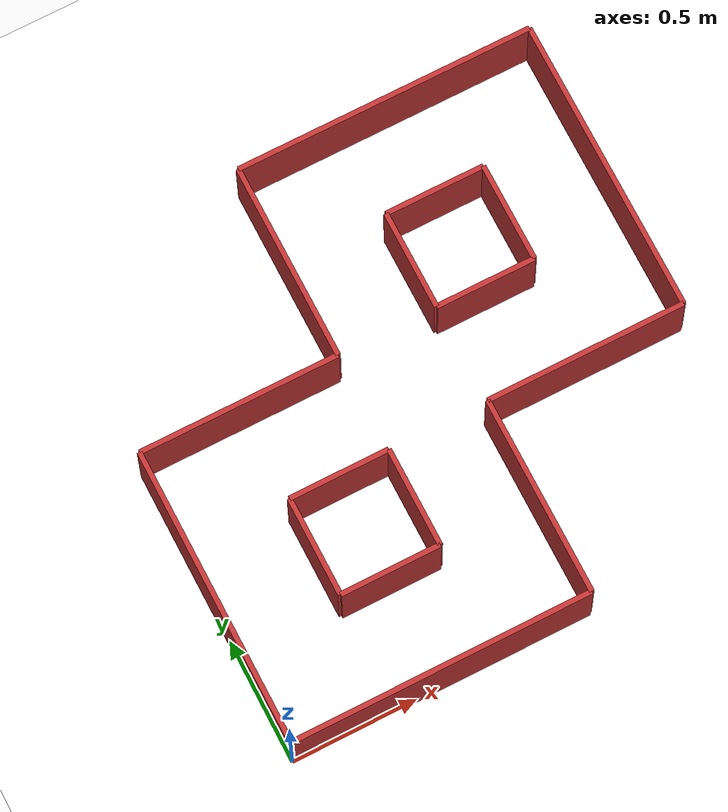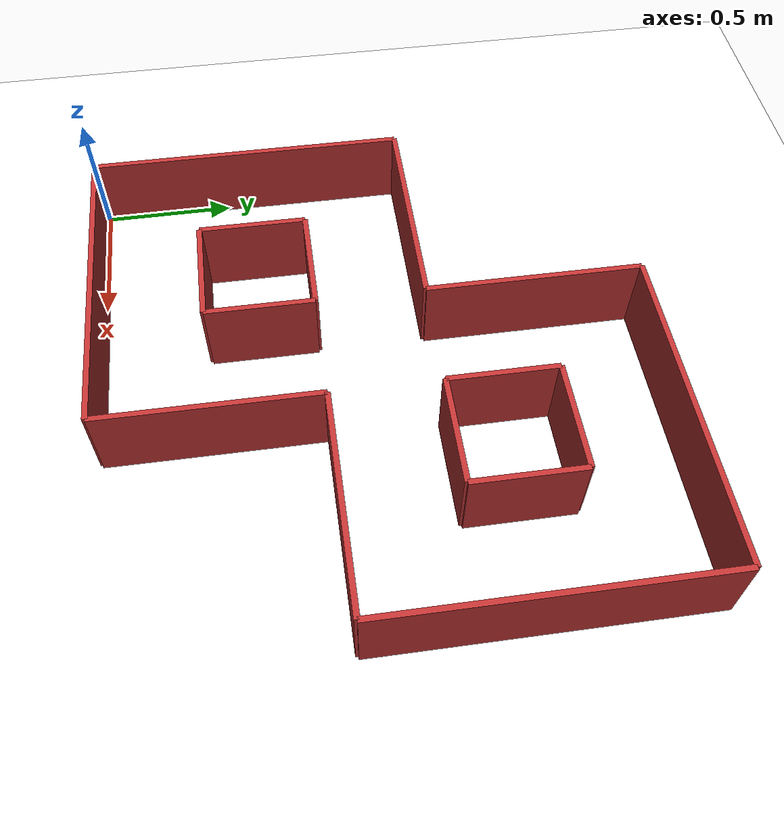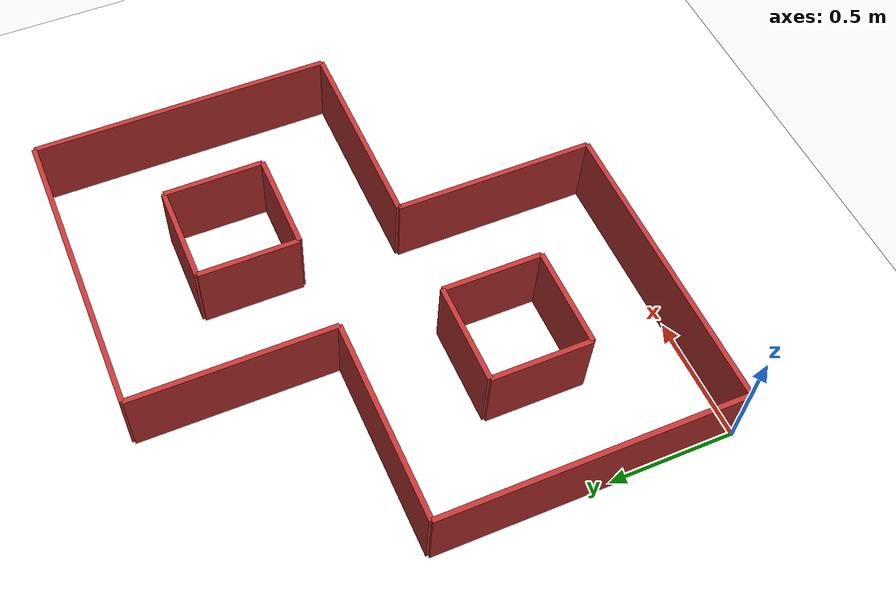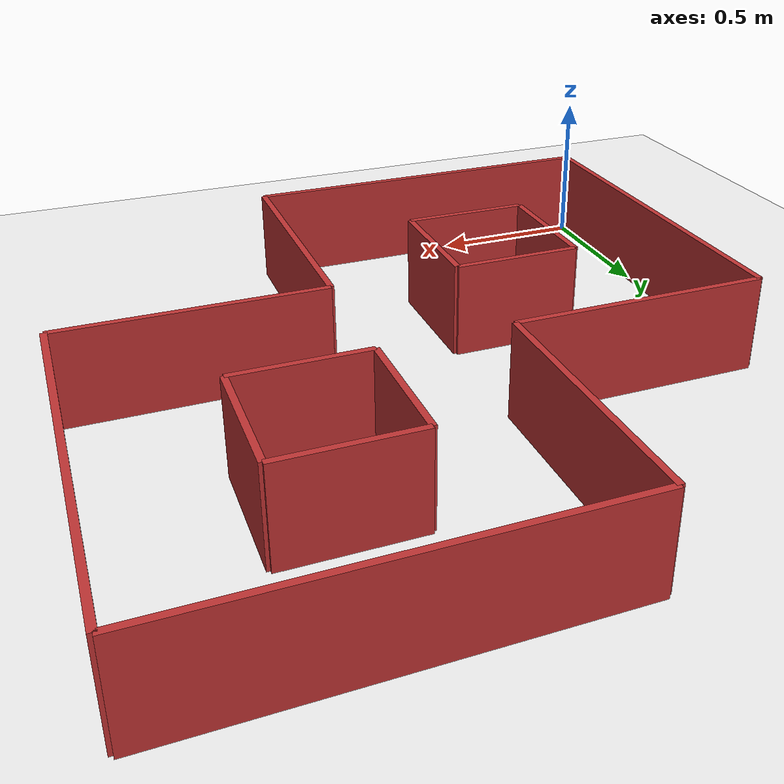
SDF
<?xml version="1.0"?>
<sdf version="1.10">
  <world name="corridor_double_loop">

    <physics name="default_physics" default="0" type="ode">
      <max_step_size>0.001</max_step_size>
      <real_time_factor>1.0</real_time_factor>
    </physics>

    <plugin filename="gz-sim-physics-system"           name="gz::sim::systems::Physics"/>
    <plugin filename="gz-sim-user-commands-system"     name="gz::sim::systems::UserCommands"/>
    <plugin filename="gz-sim-scene-broadcaster-system" name="gz::sim::systems::SceneBroadcaster"/>
    <plugin filename="gz-sim-sensors-system"           name="gz::sim::systems::Sensors">
      <render_engine>ogre2</render_engine>
    </plugin>
    <plugin filename="gz-sim-imu-system"               name="gz::sim::systems::Imu"/>

    <scene>
      <ambient>0.6 0.6 0.6 1</ambient>
      <background>0.9 0.9 0.95 1</background>
    </scene>

    <light type="directional" name="sun">
      <cast_shadows>true</cast_shadows>
      <pose>0 0 10 0 0 0</pose>
      <diffuse>0.9 0.9 0.9 1</diffuse>
      <specular>0.2 0.2 0.2 1</specular>
      <direction>-0.3 0.3 -1</direction>
    </light>

    <model name="ground_plane">
      <static>true</static>
      <link name="link">
        <collision name="collision">
          <geometry><plane><normal>0 0 1</normal><size>10 10</size></plane></geometry>
        </collision>
        <visual name="visual">
          <geometry><plane><normal>0 0 1</normal><size>10 10</size></plane></geometry>
          <material>
            <ambient>0.95 0.95 0.95 1</ambient>
            <diffuse>0.95 0.95 0.95 1</diffuse>
          </material>
        </visual>
      </link>
    </model>

    <!--  Outer perimeter walls — 8 segments forming the figure-8     -->
    <!--  boundary (an L-shape stair).                                 -->

    <!-- Loop B bottom: y=0, x ∈ [0, 1.2] -->
    <model name="outer_b_bottom">
      <static>true</static><pose>0.6 0.0 0.15 0 0 0</pose>
      <link name="link">
        <collision name="c"><geometry><box><size>1.2 0.02 0.3</size></box></geometry></collision>
        <visual name="v"><geometry><box><size>1.2 0.02 0.3</size></box></geometry>
          <material><ambient>0.75 0.2 0.2 1</ambient><diffuse>0.75 0.2 0.2 1</diffuse></material></visual>
      </link>
    </model>

    <!-- Loop B right (lower part): x=1.2, y ∈ [0, 0.8] -->
    <model name="outer_b_right">
      <static>true</static><pose>1.2 0.4 0.15 0 0 0</pose>
      <link name="link">
        <collision name="c"><geometry><box><size>0.02 0.8 0.3</size></box></geometry></collision>
        <visual name="v"><geometry><box><size>0.02 0.8 0.3</size></box></geometry>
          <material><ambient>0.75 0.2 0.2 1</ambient><diffuse>0.75 0.2 0.2 1</diffuse></material></visual>
      </link>
    </model>

    <!-- Loop A bottom (connector): y=0.8, x ∈ [1.2, 2.0] -->
    <model name="outer_a_bottom">
      <static>true</static><pose>1.6 0.8 0.15 0 0 0</pose>
      <link name="link">
        <collision name="c"><geometry><box><size>0.8 0.02 0.3</size></box></geometry></collision>
        <visual name="v"><geometry><box><size>0.8 0.02 0.3</size></box></geometry>
          <material><ambient>0.75 0.2 0.2 1</ambient><diffuse>0.75 0.2 0.2 1</diffuse></material></visual>
      </link>
    </model>

    <!-- Loop A right: x=2.0, y ∈ [0.8, 2.0] -->
    <model name="outer_a_right">
      <static>true</static><pose>2.0 1.4 0.15 0 0 0</pose>
      <link name="link">
        <collision name="c"><geometry><box><size>0.02 1.2 0.3</size></box></geometry></collision>
        <visual name="v"><geometry><box><size>0.02 1.2 0.3</size></box></geometry>
          <material><ambient>0.75 0.2 0.2 1</ambient><diffuse>0.75 0.2 0.2 1</diffuse></material></visual>
      </link>
    </model>

    <!-- Loop A top: y=2.0, x ∈ [0.8, 2.0] -->
    <model name="outer_a_top">
      <static>true</static><pose>1.4 2.0 0.15 0 0 0</pose>
      <link name="link">
        <collision name="c"><geometry><box><size>1.2 0.02 0.3</size></box></geometry></collision>
        <visual name="v"><geometry><box><size>1.2 0.02 0.3</size></box></geometry>
          <material><ambient>0.75 0.2 0.2 1</ambient><diffuse>0.75 0.2 0.2 1</diffuse></material></visual>
      </link>
    </model>

    <!-- Loop A left (upper part): x=0.8, y ∈ [1.2, 2.0] -->
    <model name="outer_a_left">
      <static>true</static><pose>0.8 1.6 0.15 0 0 0</pose>
      <link name="link">
        <collision name="c"><geometry><box><size>0.02 0.8 0.3</size></box></geometry></collision>
        <visual name="v"><geometry><box><size>0.02 0.8 0.3</size></box></geometry>
          <material><ambient>0.75 0.2 0.2 1</ambient><diffuse>0.75 0.2 0.2 1</diffuse></material></visual>
      </link>
    </model>

    <!-- Loop B top (connector): y=1.2, x ∈ [0, 0.8] -->
    <model name="outer_b_top">
      <static>true</static><pose>0.4 1.2 0.15 0 0 0</pose>
      <link name="link">
        <collision name="c"><geometry><box><size>0.8 0.02 0.3</size></box></geometry></collision>
        <visual name="v"><geometry><box><size>0.8 0.02 0.3</size></box></geometry>
          <material><ambient>0.75 0.2 0.2 1</ambient><diffuse>0.75 0.2 0.2 1</diffuse></material></visual>
      </link>
    </model>

    <!-- Loop B left: x=0, y ∈ [0, 1.2] -->
    <model name="outer_b_left">
      <static>true</static><pose>0.0 0.6 0.15 0 0 0</pose>
      <link name="link">
        <collision name="c"><geometry><box><size>0.02 1.2 0.3</size></box></geometry></collision>
        <visual name="v"><geometry><box><size>0.02 1.2 0.3</size></box></geometry>
          <material><ambient>0.75 0.2 0.2 1</ambient><diffuse>0.75 0.2 0.2 1</diffuse></material></visual>
      </link>
    </model>

    <!--  Inner blocks — one cell each, at loop centers.              -->
    <!--  Hollow: 4 narrow wall segments forming a 0.4 × 0.4 ring.    -->

    <!-- Loop B inner (cell (1,1), center (0.6, 0.6)). -->
    <model name="inner_b_south">
      <static>true</static><pose>0.6 0.4 0.15 0 0 0</pose>
      <link name="link">
        <collision name="c"><geometry><box><size>0.4 0.02 0.3</size></box></geometry></collision>
        <visual name="v"><geometry><box><size>0.4 0.02 0.3</size></box></geometry>
          <material><ambient>0.75 0.2 0.2 1</ambient><diffuse>0.75 0.2 0.2 1</diffuse></material></visual>
      </link>
    </model>
    <model name="inner_b_north">
      <static>true</static><pose>0.6 0.8 0.15 0 0 0</pose>
      <link name="link">
        <collision name="c"><geometry><box><size>0.4 0.02 0.3</size></box></geometry></collision>
        <visual name="v"><geometry><box><size>0.4 0.02 0.3</size></box></geometry>
          <material><ambient>0.75 0.2 0.2 1</ambient><diffuse>0.75 0.2 0.2 1</diffuse></material></visual>
      </link>
    </model>
    <model name="inner_b_west">
      <static>true</static><pose>0.4 0.6 0.15 0 0 0</pose>
      <link name="link">
        <collision name="c"><geometry><box><size>0.02 0.4 0.3</size></box></geometry></collision>
        <visual name="v"><geometry><box><size>0.02 0.4 0.3</size></box></geometry>
          <material><ambient>0.75 0.2 0.2 1</ambient><diffuse>0.75 0.2 0.2 1</diffuse></material></visual>
      </link>
    </model>
    <model name="inner_b_east">
      <static>true</static><pose>0.8 0.6 0.15 0 0 0</pose>
      <link name="link">
        <collision name="c"><geometry><box><size>0.02 0.4 0.3</size></box></geometry></collision>
        <visual name="v"><geometry><box><size>0.02 0.4 0.3</size></box></geometry>
          <material><ambient>0.75 0.2 0.2 1</ambient><diffuse>0.75 0.2 0.2 1</diffuse></material></visual>
      </link>
    </model>

    <!-- Loop A inner (cell (3,3), center (1.4, 1.4)). -->
    <model name="inner_a_south">
      <static>true</static><pose>1.4 1.2 0.15 0 0 0</pose>
      <link name="link">
        <collision name="c"><geometry><box><size>0.4 0.02 0.3</size></box></geometry></collision>
        <visual name="v"><geometry><box><size>0.4 0.02 0.3</size></box></geometry>
          <material><ambient>0.75 0.2 0.2 1</ambient><diffuse>0.75 0.2 0.2 1</diffuse></material></visual>
      </link>
    </model>
    <model name="inner_a_north">
      <static>true</static><pose>1.4 1.6 0.15 0 0 0</pose>
      <link name="link">
        <collision name="c"><geometry><box><size>0.4 0.02 0.3</size></box></geometry></collision>
        <visual name="v"><geometry><box><size>0.4 0.02 0.3</size></box></geometry>
          <material><ambient>0.75 0.2 0.2 1</ambient><diffuse>0.75 0.2 0.2 1</diffuse></material></visual>
      </link>
    </model>
    <model name="inner_a_west">
      <static>true</static><pose>1.2 1.4 0.15 0 0 0</pose>
      <link name="link">
        <collision name="c"><geometry><box><size>0.02 0.4 0.3</size></box></geometry></collision>
        <visual name="v"><geometry><box><size>0.02 0.4 0.3</size></box></geometry>
          <material><ambient>0.75 0.2 0.2 1</ambient><diffuse>0.75 0.2 0.2 1</diffuse></material></visual>
      </link>
    </model>
    <model name="inner_a_east">
      <static>true</static><pose>1.6 1.4 0.15 0 0 0</pose>
      <link name="link">
        <collision name="c"><geometry><box><size>0.02 0.4 0.3</size></box></geometry></collision>
        <visual name="v"><geometry><box><size>0.02 0.4 0.3</size></box></geometry>
          <material><ambient>0.75 0.2 0.2 1</ambient><diffuse>0.75 0.2 0.2 1</diffuse></material></visual>
      </link>
    </model>

  </world>
</sdf>
